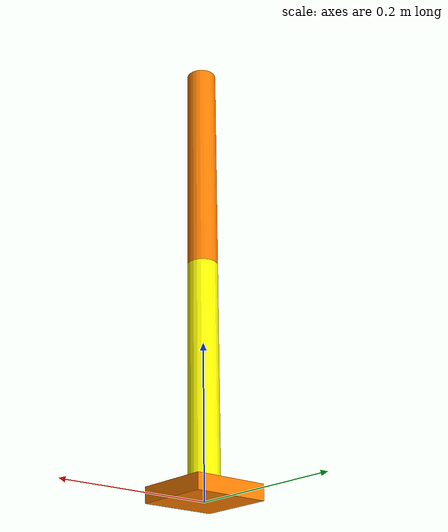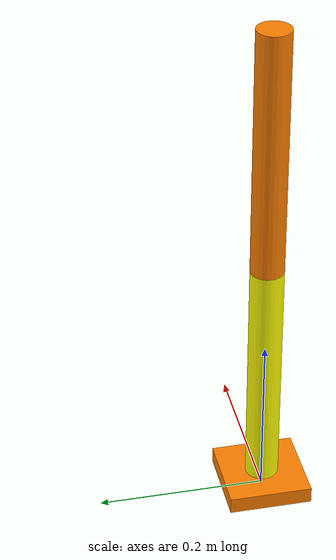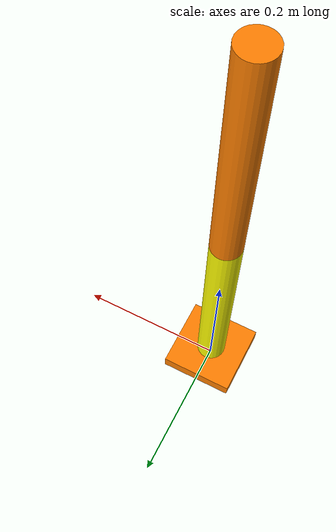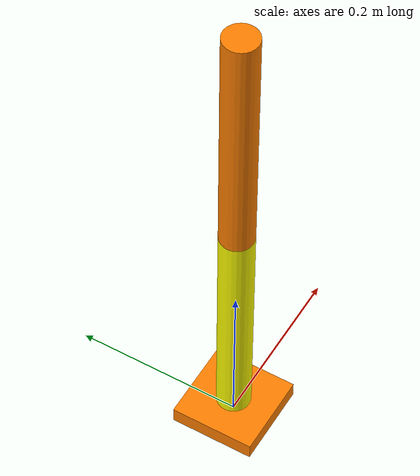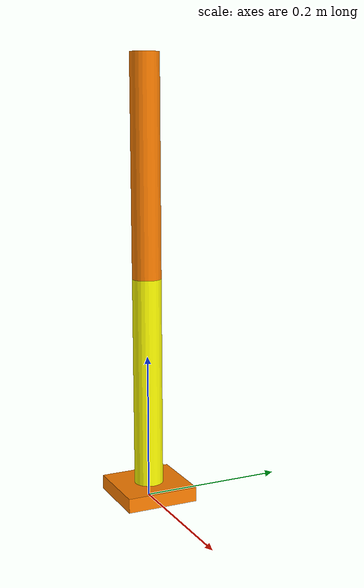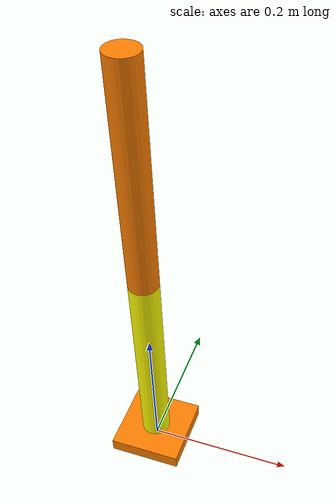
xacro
<?xml version="1.0"?>

<robot name="my_robot" xmlns:xacro="http://www.ros.org/wiki/xacro">

    <xacro:include filename="common_properties.xacro" />
    <xacro:include filename="arm.xacro" />
    <xacro:include filename="arm_gazebo.xacro" />

</robot>

<!--
    By convention, this file is .urdf.xacro to indicate that it is the file that concerns the launch file
    the other .xacro files are included in this .urdf.xacro file.
-->

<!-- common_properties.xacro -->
<!-- The name="" is absent in the robot tag, meaning that this file is not
     meant to be launched directly, but included in another .urdf.xacro -->
<robot xmlns:xacro="http://www.ros.org/wiki/xacro">

    <material name="blue">
        <color rgba="0 0 0.5 1" />
    </material>

    <material name="grey">
        <color rgba="0.5 0.5 0.5 1" />
    </material>

    <material name="pink">
        <color rgba="1 0 0.5 1" />
    </material>

    <material name="orange">
        <color rgba="1 0.5 0 1" />
    </material>

    <material name="yellow">
        <color rgba="1 1 0 1" />
    </material>

    <xacro:macro name="box_inertia" params="m x y z o_xyz o_rpy">
        <inertial>
            <mass value="${m}" />   <!-- mass in kg -->
            <origin xyz="${o_xyz}" rpy="${o_rpy}" />
            <inertia ixx="${(m/12) * (y*y + z*z)}"  ixy="0"                         ixz="0"
                                                    iyy="${(m/12) * (x*x + z*z)}"   iyz="0"
                                                                                    izz="${(m/12) * (x*x + y*y)}" />
        </inertial>
    </xacro:macro>

    <xacro:macro name="cylinder_inertia" params="m r l o_xyz o_rpy">
        <inertial>
            <mass value="${m}" />
            <origin xyz="${o_xyz}" rpy="${o_rpy}" />
            <inertia ixx="${(m/12) * (3*r*r + l*l)}"  ixy="0"                            ixz="0"
                                                      iyy="${(m/12) * (3*r*r + l*l)}"    iyz="0"
                                                                                         izz="${(1/2)*m*r*r}" />
        </inertial>
    </xacro:macro>

    <xacro:macro name="sphere_inertia" params="m r o_xyz o_rpy">
        <inertial>
            <mass value="${m}" />
            <origin xyz="${o_xyz}" rpy="${o_rpy}" />
            <inertia ixx="${(2/5) * m * r*r}"  ixy="0"                   ixz="0"
                                               iyy="${(2/5) * m * r*r}"  iyz="0"
                                                                         izz="${(2/5) * m * r*r}" />
        </inertial>
    </xacro:macro>

</robot>

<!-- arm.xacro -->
<robot xmlns:xacro="http://www.ros.org/wiki/xacro">

    <xacro:property name="arm_base_length" value="0.1" />
    <xacro:property name="arm_base_width" value="0.1" />
    <xacro:property name="arm_base_height" value="0.02" />
    <xacro:property name="forearm_radius" value="0.02" />
    <xacro:property name="forearm_length" value="0.3" />
    <xacro:property name="hand_radius" value="0.02" />
    <xacro:property name="hand_length" value="0.3" />

    <xacro:property name="arm_base_mass" value="0.5" />   <!-- increase the mass to 5.0 if you try out the arm alone -->
    <xacro:property name="forearm_mass" value="0.3" />
    <xacro:property name="hand_mass" value="0.3" />

  <!-- ################ LINKS ################ -->

    <link name="arm_base_link">
        <visual>
            <geometry>
                <box size="${arm_base_length} ${arm_base_width} ${arm_base_height}" />
            </geometry>
            <material name="orange" />
            <origin xyz="0 0 ${arm_base_height/2.0}" rpy="0 0 0" />
        </visual>
        <collision>
            <geometry>
                <box size="${arm_base_length} ${arm_base_width} ${arm_base_height}" />
            </geometry>
        </collision>
        <xacro:box_inertia m="${arm_base_mass}" x="${arm_base_length}" y="${arm_base_width}" z="${arm_base_height}"
                           o_xyz="0 0 0" o_rpy="0 0 0" />
    </link>

    <link name="forearm_link">
        <visual>
            <geometry>
                <cylinder radius="${forearm_radius}" length="${forearm_length}" />
            </geometry>
            <material name="yellow" />
            <origin xyz="0 0 ${forearm_length/2.0}" rpy="0 0 0" />
        </visual>
        <collision>
            <geometry>
                <cylinder radius="${forearm_radius}" length="${forearm_length}" />   <!-- one can also use a box to make it even simpler, but a cylinder is simple enough -->
            </geometry>
            <origin xyz="0 0 ${forearm_length/2.0}" rpy="0 0 0" />
        </collision>
        <xacro:cylinder_inertia m="${forearm_mass}" r="${forearm_radius}" l="${forearm_length}"
                                o_xyz="0 0 ${forearm_length/2.0}" o_rpy="0 0 0" />
    </link>

    <link name="hand_link">
        <visual>
            <geometry>
                <cylinder radius="${hand_radius}" length="${hand_length}" />
            </geometry>
            <material name="orange" />
            <origin xyz="0 0 ${hand_length/2.0}" rpy="0 0 0" />
        </visual>
        <collision>
            <geometry>
                <cylinder radius="${hand_radius}" length="${hand_length}" />
            </geometry>
            <origin xyz="0 0 ${hand_length/2.0}" rpy="0 0 0" />
        </collision>
        <xacro:cylinder_inertia m="${hand_mass}" r="${hand_radius}" l="${hand_length}"
                                o_xyz="0 0 ${hand_length/2.0}" o_rpy="0 0 0" />
    </link>

  <!-- ################ JOINTS ################ -->

    <joint name="arm_base_forearm_joint" type="revolute">
        <parent link="arm_base_link" />
        <child link="forearm_link" />

        <origin xyz="0 0 ${arm_base_height/2.0}" rpy="0 0 0" />   <!-- important detail here that i had forgotten, we need to lift this joint (elbow) because the forearm isn't in the arm_base, it is right where the arm_base ends -->
        <axis xyz="0 1 0" />

        <limit
            lower="0"
            upper="${pi/2.0}"
            effort="100"
            velocity="100" />

        <dynamics friction="0.3" damping="0.3" />
    </joint>

    <joint name="forearm_hand_joint" type="revolute">
        <parent link="forearm_link" />
        <child link="hand_link" />

        <origin xyz="0 0 ${forearm_length}" rpy="0 0 0" />
        <axis xyz="0 1 0" />

        <limit
            lower="0"
            upper="${pi/2.0}"
            effort="100"
            velocity="100" />

        <dynamics friction="0.3" damping="0.3" />
    </joint>

</robot>
